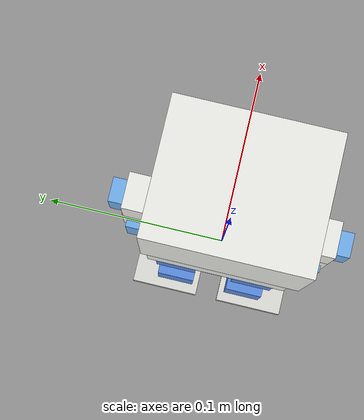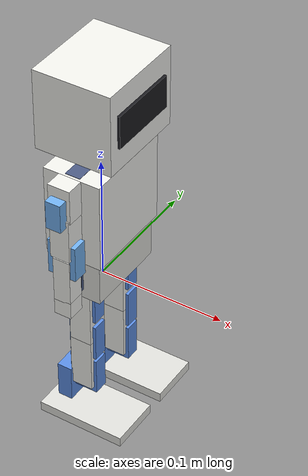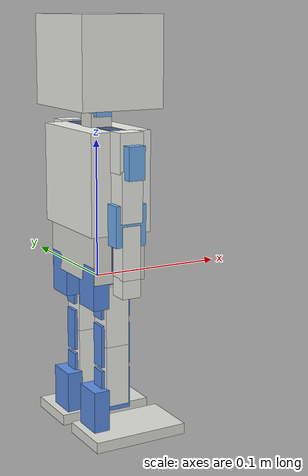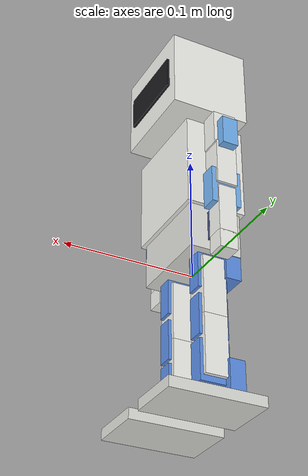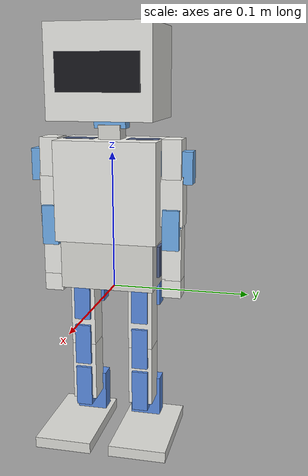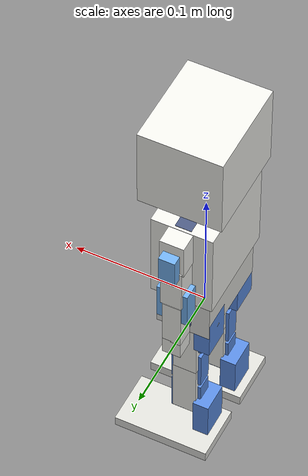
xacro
<?xml version="1.0"?>
<!-- Generated by sim/mini_humanoid/gen_robot.py — edit that file, not this one.
     Mico for Gazebo Harmonic (gz-sim) + ros2_control. Same links, joints and frames as humanoid.urdf. -->
<robot name="mico" xmlns:xacro="http://www.ros.org/wiki/xacro">
  <xacro:arg name="controllers" default="$(find humanoid_description)/config/mico_controllers.yaml"/>
  <!-- camera:=false skips the rendered head camera (no GPU in the VM, or a faster headless run) -->
  <xacro:arg name="camera" default="true"/>
  <!-- Frames follow REP-103 (x forward, y left, z up) and REP-120 names (imu_link, l_sole, ...).
       base_link sits at the hip point H, 115 mm above the floor in the standing pose. -->
  <material name="battery"><color rgba="0.93 0.55 0.42 1"/></material>
  <material name="frame"><color rgba="0.88 0.88 0.86 1"/></material>
  <material name="hidden"><color rgba="0 0 0 0"/></material>
  <material name="lens"><color rgba="0.1 0.1 0.12 1"/></material>
  <material name="mg90s"><color rgba="0.3 0.36 0.52 1"/></material>
  <material name="mg92b"><color rgba="0.36 0.56 0.9 1"/></material>
  <material name="pcb"><color rgba="0.36 0.75 0.6 1"/></material>
  <material name="sg90"><color rgba="0.45 0.7 0.95 1"/></material>
  <material name="shell"><color rgba="0.95 0.95 0.93 1"/></material>
  <link name="base_link">
    <inertial><origin xyz="-0.0012 0.0000 0.0674"/><mass value="0.2168"/><inertia ixx="1.698e-04" iyy="1.210e-04" izz="8.576e-05" ixy="0" ixz="0" iyz="0"/></inertial>
    <visual name="pelvis"><origin xyz="0.0000 0.0000 0.0210"/><geometry><box size="0.0400 0.0680 0.0360"/></geometry><material name="frame"/></visual>
    <collision name="pelvis_collision"><origin xyz="0.0000 0.0000 0.0210"/><geometry><box size="0.0400 0.0680 0.0360"/></geometry></collision>
    <visual name="torso_shell"><origin xyz="0.0000 0.0000 0.0740"/><geometry><box size="0.0460 0.0740 0.0720"/></geometry><material name="shell"/></visual>
    <collision name="torso_shell_collision"><origin xyz="0.0000 0.0000 0.0740"/><geometry><box size="0.0460 0.0740 0.0720"/></geometry></collision>
    <visual name="battery_2s"><origin xyz="0.0000 0.0000 0.0495"/><geometry><box size="0.0300 0.0560 0.0190"/></geometry><material name="battery"/></visual>
    <collision name="battery_2s_collision"><origin xyz="0.0000 0.0000 0.0495"/><geometry><box size="0.0300 0.0560 0.0190"/></geometry></collision>
    <visual name="electronics"><origin xyz="0.0000 0.0000 0.0750"/><geometry><box size="0.0250 0.0620 0.0250"/></geometry><material name="pcb"/></visual>
    <collision name="electronics_collision"><origin xyz="0.0000 0.0000 0.0750"/><geometry><box size="0.0250 0.0620 0.0250"/></geometry></collision>
    <visual name="ubec"><origin xyz="-0.0170 0.0000 0.0820"/><geometry><box size="0.0080 0.0260 0.0460"/></geometry><material name="pcb"/></visual>
    <collision name="ubec_collision"><origin xyz="-0.0170 0.0000 0.0820"/><geometry><box size="0.0080 0.0260 0.0460"/></geometry></collision>
    <visual name="l_shoulder_pitch_servo"><origin xyz="0.0000 0.0235 0.0960"/><geometry><box size="0.0122 0.0228 0.0285"/></geometry><material name="mg90s"/></visual>
    <collision name="l_shoulder_pitch_servo_collision"><origin xyz="0.0000 0.0235 0.0960"/><geometry><box size="0.0122 0.0228 0.0285"/></geometry></collision>
    <visual name="r_shoulder_pitch_servo"><origin xyz="0.0000 -0.0235 0.0960"/><geometry><box size="0.0122 0.0228 0.0285"/></geometry><material name="mg90s"/></visual>
    <collision name="r_shoulder_pitch_servo_collision"><origin xyz="0.0000 -0.0235 0.0960"/><geometry><box size="0.0122 0.0228 0.0285"/></geometry></collision>
    <visual name="neck_yaw_servo"><origin xyz="0.0000 0.0000 0.0980"/><geometry><box size="0.0122 0.0290 0.0230"/></geometry><material name="sg90"/></visual>
    <collision name="neck_yaw_servo_collision"><origin xyz="0.0000 0.0000 0.0980"/><geometry><box size="0.0122 0.0290 0.0230"/></geometry></collision>
  </link>
  <link name="l_hip_yaw_link">
    <inertial><origin xyz="0.0000 0.0000 0.0220"/><mass value="0.0134"/><inertia ixx="1.488e-06" iyy="7.467e-07" izz="1.073e-06" ixy="0" ixz="0" iyz="0"/></inertial>
    <visual name="l_hip_yaw_servo"><origin xyz="0.0000 0.0000 0.0220"/><geometry><box size="0.0122 0.0285 0.0228"/></geometry><material name="mg90s"/></visual>
    <collision name="l_hip_yaw_servo_collision"><origin xyz="0.0000 0.0000 0.0220"/><geometry><box size="0.0122 0.0285 0.0228"/></geometry></collision>
  </link>
  <link name="l_hip_roll_link">
    <inertial><origin xyz="-0.0140 0.0000 0.0000"/><mass value="0.0140"/><inertia ixx="1.728e-06" iyy="1.289e-06" izz="7.745e-07" ixy="0" ixz="0" iyz="0"/></inertial>
    <visual name="l_hip_roll_servo"><origin xyz="-0.0140 0.0000 0.0000"/><geometry><box size="0.0120 0.0228 0.0310"/></geometry><material name="mg92b"/></visual>
    <collision name="l_hip_roll_servo_collision"><origin xyz="-0.0140 0.0000 0.0000"/><geometry><box size="0.0120 0.0228 0.0310"/></geometry></collision>
  </link>
  <link name="l_hip_pitch_link">
    <inertial><origin xyz="0.0000 0.0000 -0.0149"/><mass value="0.0250"/><inertia ixx="4.565e-06" iyy="5.004e-06" izz="1.368e-06" ixy="0" ixz="0" iyz="0"/></inertial>
    <visual name="l_hip_pitch_servo"><origin xyz="0.0000 0.0000 -0.0090"/><geometry><box size="0.0228 0.0120 0.0310"/></geometry><material name="mg92b"/></visual>
    <collision name="l_hip_pitch_servo_collision"><origin xyz="0.0000 0.0000 -0.0090"/><geometry><box size="0.0228 0.0120 0.0310"/></geometry></collision>
    <visual name="l_thigh"><origin xyz="0.0000 0.0000 -0.0225"/><geometry><box size="0.0180 0.0180 0.0450"/></geometry><material name="shell"/></visual>
    <collision name="l_thigh_collision"><origin xyz="0.0000 0.0000 -0.0225"/><geometry><box size="0.0180 0.0180 0.0450"/></geometry></collision>
  </link>
  <link name="l_knee_link">
    <inertial><origin xyz="0.0000 0.0000 -0.0099"/><mass value="0.0250"/><inertia ixx="6.561e-06" iyy="6.999e-06" izz="1.368e-06" ixy="0" ixz="0" iyz="0"/></inertial>
    <visual name="l_knee_servo"><origin xyz="0.0000 0.0000 0.0000"/><geometry><box size="0.0228 0.0120 0.0310"/></geometry><material name="mg92b"/></visual>
    <collision name="l_knee_servo_collision"><origin xyz="0.0000 0.0000 0.0000"/><geometry><box size="0.0228 0.0120 0.0310"/></geometry></collision>
    <visual name="l_shin"><origin xyz="0.0000 0.0000 -0.0225"/><geometry><box size="0.0180 0.0180 0.0450"/></geometry><material name="shell"/></visual>
    <collision name="l_shin_collision"><origin xyz="0.0000 0.0000 -0.0225"/><geometry><box size="0.0180 0.0180 0.0450"/></geometry></collision>
  </link>
  <link name="l_ankle_pitch_link">
    <inertial><origin xyz="0.0000 0.0000 0.0110"/><mass value="0.0140"/><inertia ixx="1.289e-06" iyy="1.728e-06" izz="7.745e-07" ixy="0" ixz="0" iyz="0"/></inertial>
    <visual name="l_ankle_pitch_servo"><origin xyz="0.0000 0.0000 0.0110"/><geometry><box size="0.0228 0.0120 0.0310"/></geometry><material name="mg92b"/></visual>
    <collision name="l_ankle_pitch_servo_collision"><origin xyz="0.0000 0.0000 0.0110"/><geometry><box size="0.0228 0.0120 0.0310"/></geometry></collision>
  </link>
  <link name="l_ankle_roll_link">
    <inertial><origin xyz="-0.0029 0.0028 -0.0108"/><mass value="0.0260"/><inertia ixx="6.121e-06" iyy="1.259e-05" izz="1.168e-05" ixy="0" ixz="0" iyz="0"/></inertial>
    <visual name="l_ankle_roll_servo"><origin xyz="-0.0140 0.0000 -0.0020"/><geometry><box size="0.0120 0.0228 0.0310"/></geometry><material name="mg92b"/></visual>
    <collision name="l_ankle_roll_servo_collision"><origin xyz="-0.0140 0.0000 -0.0020"/><geometry><box size="0.0120 0.0228 0.0310"/></geometry></collision>
    <visual name="l_foot"><origin xyz="0.0100 0.0060 -0.0210"/><geometry><box size="0.0720 0.0420 0.0080"/></geometry><material name="frame"/></visual>
    <collision name="l_foot_collision"><origin xyz="0.0100 0.0060 -0.0210"/><geometry><box size="0.0720 0.0420 0.0080"/></geometry></collision>
  </link>
  <link name="r_hip_yaw_link">
    <inertial><origin xyz="0.0000 0.0000 0.0220"/><mass value="0.0134"/><inertia ixx="1.488e-06" iyy="7.467e-07" izz="1.073e-06" ixy="0" ixz="0" iyz="0"/></inertial>
    <visual name="r_hip_yaw_servo"><origin xyz="0.0000 0.0000 0.0220"/><geometry><box size="0.0122 0.0285 0.0228"/></geometry><material name="mg90s"/></visual>
    <collision name="r_hip_yaw_servo_collision"><origin xyz="0.0000 0.0000 0.0220"/><geometry><box size="0.0122 0.0285 0.0228"/></geometry></collision>
  </link>
  <link name="r_hip_roll_link">
    <inertial><origin xyz="-0.0140 0.0000 0.0000"/><mass value="0.0140"/><inertia ixx="1.728e-06" iyy="1.289e-06" izz="7.745e-07" ixy="0" ixz="0" iyz="0"/></inertial>
    <visual name="r_hip_roll_servo"><origin xyz="-0.0140 0.0000 0.0000"/><geometry><box size="0.0120 0.0228 0.0310"/></geometry><material name="mg92b"/></visual>
    <collision name="r_hip_roll_servo_collision"><origin xyz="-0.0140 0.0000 0.0000"/><geometry><box size="0.0120 0.0228 0.0310"/></geometry></collision>
  </link>
  <link name="r_hip_pitch_link">
    <inertial><origin xyz="0.0000 0.0000 -0.0149"/><mass value="0.0250"/><inertia ixx="4.565e-06" iyy="5.004e-06" izz="1.368e-06" ixy="0" ixz="0" iyz="0"/></inertial>
    <visual name="r_hip_pitch_servo"><origin xyz="0.0000 0.0000 -0.0090"/><geometry><box size="0.0228 0.0120 0.0310"/></geometry><material name="mg92b"/></visual>
    <collision name="r_hip_pitch_servo_collision"><origin xyz="0.0000 0.0000 -0.0090"/><geometry><box size="0.0228 0.0120 0.0310"/></geometry></collision>
    <visual name="r_thigh"><origin xyz="0.0000 0.0000 -0.0225"/><geometry><box size="0.0180 0.0180 0.0450"/></geometry><material name="shell"/></visual>
    <collision name="r_thigh_collision"><origin xyz="0.0000 0.0000 -0.0225"/><geometry><box size="0.0180 0.0180 0.0450"/></geometry></collision>
  </link>
  <link name="r_knee_link">
    <inertial><origin xyz="0.0000 0.0000 -0.0099"/><mass value="0.0250"/><inertia ixx="6.561e-06" iyy="6.999e-06" izz="1.368e-06" ixy="0" ixz="0" iyz="0"/></inertial>
    <visual name="r_knee_servo"><origin xyz="0.0000 0.0000 0.0000"/><geometry><box size="0.0228 0.0120 0.0310"/></geometry><material name="mg92b"/></visual>
    <collision name="r_knee_servo_collision"><origin xyz="0.0000 0.0000 0.0000"/><geometry><box size="0.0228 0.0120 0.0310"/></geometry></collision>
    <visual name="r_shin"><origin xyz="0.0000 0.0000 -0.0225"/><geometry><box size="0.0180 0.0180 0.0450"/></geometry><material name="shell"/></visual>
    <collision name="r_shin_collision"><origin xyz="0.0000 0.0000 -0.0225"/><geometry><box size="0.0180 0.0180 0.0450"/></geometry></collision>
  </link>
  <link name="r_ankle_pitch_link">
    <inertial><origin xyz="0.0000 0.0000 0.0110"/><mass value="0.0140"/><inertia ixx="1.289e-06" iyy="1.728e-06" izz="7.745e-07" ixy="0" ixz="0" iyz="0"/></inertial>
    <visual name="r_ankle_pitch_servo"><origin xyz="0.0000 0.0000 0.0110"/><geometry><box size="0.0228 0.0120 0.0310"/></geometry><material name="mg92b"/></visual>
    <collision name="r_ankle_pitch_servo_collision"><origin xyz="0.0000 0.0000 0.0110"/><geometry><box size="0.0228 0.0120 0.0310"/></geometry></collision>
  </link>
  <link name="r_ankle_roll_link">
    <inertial><origin xyz="-0.0029 -0.0028 -0.0108"/><mass value="0.0260"/><inertia ixx="6.121e-06" iyy="1.259e-05" izz="1.168e-05" ixy="0" ixz="0" iyz="0"/></inertial>
    <visual name="r_ankle_roll_servo"><origin xyz="-0.0140 0.0000 -0.0020"/><geometry><box size="0.0120 0.0228 0.0310"/></geometry><material name="mg92b"/></visual>
    <collision name="r_ankle_roll_servo_collision"><origin xyz="-0.0140 0.0000 -0.0020"/><geometry><box size="0.0120 0.0228 0.0310"/></geometry></collision>
    <visual name="r_foot"><origin xyz="0.0100 -0.0060 -0.0210"/><geometry><box size="0.0720 0.0420 0.0080"/></geometry><material name="frame"/></visual>
    <collision name="r_foot_collision"><origin xyz="0.0100 -0.0060 -0.0210"/><geometry><box size="0.0720 0.0420 0.0080"/></geometry></collision>
  </link>
  <link name="l_shoulder_pitch_link">
    <inertial><origin xyz="0.0000 0.0050 0.0000"/><mass value="0.0010"/><inertia ixx="8.167e-08" iyy="9.233e-08" izz="4.333e-08" ixy="0" ixz="0" iyz="0"/></inertial>
    <visual name="l_shoulder_cap"><origin xyz="0.0000 0.0050 0.0000"/><geometry><box size="0.0180 0.0140 0.0280"/></geometry><material name="shell"/></visual>
    <collision name="l_shoulder_cap_collision"><origin xyz="0.0000 0.0050 0.0000"/><geometry><box size="0.0180 0.0140 0.0280"/></geometry></collision>
  </link>
  <link name="l_shoulder_roll_link">
    <inertial><origin xyz="0.0000 0.0000 -0.0120"/><mass value="0.0120"/><inertia ixx="2.711e-06" iyy="2.192e-06" izz="8.704e-07" ixy="0" ixz="0" iyz="0"/></inertial>
    <visual name="l_shoulder_roll_servo"><origin xyz="0.0000 0.0000 -0.0060"/><geometry><box size="0.0122 0.0290 0.0230"/></geometry><material name="sg90"/></visual>
    <collision name="l_shoulder_roll_servo_collision"><origin xyz="0.0000 0.0000 -0.0060"/><geometry><box size="0.0122 0.0290 0.0230"/></geometry></collision>
    <visual name="l_upper_arm"><origin xyz="0.0000 0.0000 -0.0300"/><geometry><box size="0.0160 0.0160 0.0360"/></geometry><material name="shell"/></visual>
    <collision name="l_upper_arm_collision"><origin xyz="0.0000 0.0000 -0.0300"/><geometry><box size="0.0160 0.0160 0.0360"/></geometry></collision>
  </link>
  <link name="l_elbow_link">
    <inertial><origin xyz="0.0000 0.0000 -0.0083"/><mass value="0.0125"/><inertia ixx="3.825e-06" iyy="4.111e-06" izz="6.227e-07" ixy="0" ixz="0" iyz="0"/></inertial>
    <visual name="l_elbow_servo"><origin xyz="0.0000 0.0000 0.0000"/><geometry><box size="0.0230 0.0122 0.0290"/></geometry><material name="sg90"/></visual>
    <collision name="l_elbow_servo_collision"><origin xyz="0.0000 0.0000 0.0000"/><geometry><box size="0.0230 0.0122 0.0290"/></geometry></collision>
    <visual name="l_forearm"><origin xyz="0.0000 0.0000 -0.0190"/><geometry><box size="0.0140 0.0140 0.0380"/></geometry><material name="shell"/></visual>
    <collision name="l_forearm_collision"><origin xyz="0.0000 0.0000 -0.0190"/><geometry><box size="0.0140 0.0140 0.0380"/></geometry></collision>
    <visual name="l_hand"><origin xyz="0.0000 0.0000 -0.0440"/><geometry><box size="0.0140 0.0140 0.0140"/></geometry><material name="shell"/></visual>
    <collision name="l_hand_collision"><origin xyz="0.0000 0.0000 -0.0440"/><geometry><box size="0.0140 0.0140 0.0140"/></geometry></collision>
  </link>
  <link name="r_shoulder_pitch_link">
    <inertial><origin xyz="0.0000 -0.0050 0.0000"/><mass value="0.0010"/><inertia ixx="8.167e-08" iyy="9.233e-08" izz="4.333e-08" ixy="0" ixz="0" iyz="0"/></inertial>
    <visual name="r_shoulder_cap"><origin xyz="0.0000 -0.0050 0.0000"/><geometry><box size="0.0180 0.0140 0.0280"/></geometry><material name="shell"/></visual>
    <collision name="r_shoulder_cap_collision"><origin xyz="0.0000 -0.0050 0.0000"/><geometry><box size="0.0180 0.0140 0.0280"/></geometry></collision>
  </link>
  <link name="r_shoulder_roll_link">
    <inertial><origin xyz="0.0000 0.0000 -0.0120"/><mass value="0.0120"/><inertia ixx="2.711e-06" iyy="2.192e-06" izz="8.704e-07" ixy="0" ixz="0" iyz="0"/></inertial>
    <visual name="r_shoulder_roll_servo"><origin xyz="0.0000 0.0000 -0.0060"/><geometry><box size="0.0122 0.0290 0.0230"/></geometry><material name="sg90"/></visual>
    <collision name="r_shoulder_roll_servo_collision"><origin xyz="0.0000 0.0000 -0.0060"/><geometry><box size="0.0122 0.0290 0.0230"/></geometry></collision>
    <visual name="r_upper_arm"><origin xyz="0.0000 0.0000 -0.0300"/><geometry><box size="0.0160 0.0160 0.0360"/></geometry><material name="shell"/></visual>
    <collision name="r_upper_arm_collision"><origin xyz="0.0000 0.0000 -0.0300"/><geometry><box size="0.0160 0.0160 0.0360"/></geometry></collision>
  </link>
  <link name="r_elbow_link">
    <inertial><origin xyz="0.0000 0.0000 -0.0083"/><mass value="0.0125"/><inertia ixx="3.825e-06" iyy="4.111e-06" izz="6.227e-07" ixy="0" ixz="0" iyz="0"/></inertial>
    <visual name="r_elbow_servo"><origin xyz="0.0000 0.0000 0.0000"/><geometry><box size="0.0230 0.0122 0.0290"/></geometry><material name="sg90"/></visual>
    <collision name="r_elbow_servo_collision"><origin xyz="0.0000 0.0000 0.0000"/><geometry><box size="0.0230 0.0122 0.0290"/></geometry></collision>
    <visual name="r_forearm"><origin xyz="0.0000 0.0000 -0.0190"/><geometry><box size="0.0140 0.0140 0.0380"/></geometry><material name="shell"/></visual>
    <collision name="r_forearm_collision"><origin xyz="0.0000 0.0000 -0.0190"/><geometry><box size="0.0140 0.0140 0.0380"/></geometry></collision>
    <visual name="r_hand"><origin xyz="0.0000 0.0000 -0.0440"/><geometry><box size="0.0140 0.0140 0.0140"/></geometry><material name="shell"/></visual>
    <collision name="r_hand_collision"><origin xyz="0.0000 0.0000 -0.0440"/><geometry><box size="0.0140 0.0140 0.0140"/></geometry></collision>
  </link>
  <link name="neck_yaw_link">
    <inertial><origin xyz="0.0000 0.0000 0.0168"/><mass value="0.0130"/><inertia ixx="1.946e-06" iyy="1.661e-06" izz="6.790e-07" ixy="0" ixz="0" iyz="0"/></inertial>
    <visual name="neck"><origin xyz="0.0000 0.0000 0.0050"/><geometry><box size="0.0160 0.0160 0.0100"/></geometry><material name="frame"/></visual>
    <collision name="neck_collision"><origin xyz="0.0000 0.0000 0.0050"/><geometry><box size="0.0160 0.0160 0.0100"/></geometry></collision>
    <visual name="head_pitch_servo"><origin xyz="0.0000 0.0000 0.0220"/><geometry><box size="0.0122 0.0230 0.0290"/></geometry><material name="sg90"/></visual>
    <collision name="head_pitch_servo_collision"><origin xyz="0.0000 0.0000 0.0220"/><geometry><box size="0.0122 0.0230 0.0290"/></geometry></collision>
  </link>
  <link name="head_pitch_link">
    <inertial><origin xyz="0.0098 0.0000 0.0240"/><mass value="0.0200"/><inertia ixx="1.177e-05" iyy="1.241e-05" izz="1.404e-05" ixy="0" ixz="0" iyz="0"/></inertial>
    <visual name="head_shell"><origin xyz="0.0020 0.0000 0.0240"/><geometry><box size="0.0620 0.0740 0.0640"/></geometry><material name="shell"/></visual>
    <collision name="head_shell_collision"><origin xyz="0.0020 0.0000 0.0240"/><geometry><box size="0.0620 0.0740 0.0640"/></geometry></collision>
    <visual name="visor"><origin xyz="0.0340 0.0000 0.0240"/><geometry><box size="0.0020 0.0580 0.0260"/></geometry><material name="lens"/></visual>
    <collision name="visor_collision"><origin xyz="0.0340 0.0000 0.0240"/><geometry><box size="0.0020 0.0580 0.0260"/></geometry></collision>
    <visual name="camera"><origin xyz="0.0280 0.0000 0.0240"/><geometry><box size="0.0060 0.0250 0.0240"/></geometry><material name="pcb"/></visual>
    <collision name="camera_collision"><origin xyz="0.0280 0.0000 0.0240"/><geometry><box size="0.0060 0.0250 0.0240"/></geometry></collision>
  </link>
  <joint name="l_hip_yaw" type="revolute"><parent link="base_link"/><child link="l_hip_yaw_link"/><origin xyz="0.0000 0.0220 0.0000"/><axis xyz="0 0 1"/><limit lower="-0.7854" upper="0.7854" effort="0.216" velocity="13.09"/><dynamics damping="0.02" friction="0"/></joint>
  <joint name="r_hip_yaw" type="revolute"><parent link="base_link"/><child link="r_hip_yaw_link"/><origin xyz="0.0000 -0.0220 0.0000"/><axis xyz="0 0 1"/><limit lower="-0.7854" upper="0.7854" effort="0.216" velocity="13.09"/><dynamics damping="0.02" friction="0"/></joint>
  <joint name="l_shoulder_pitch" type="revolute"><parent link="base_link"/><child link="l_shoulder_pitch_link"/><origin xyz="0.0000 0.0400 0.0970"/><axis xyz="0 1 0"/><limit lower="-3.1416" upper="1.0472" effort="0.216" velocity="13.09"/><dynamics damping="0.02" friction="0"/></joint>
  <joint name="r_shoulder_pitch" type="revolute"><parent link="base_link"/><child link="r_shoulder_pitch_link"/><origin xyz="0.0000 -0.0400 0.0970"/><axis xyz="0 1 0"/><limit lower="-3.1416" upper="1.0472" effort="0.216" velocity="13.09"/><dynamics damping="0.02" friction="0"/></joint>
  <joint name="neck_yaw" type="revolute"><parent link="base_link"/><child link="neck_yaw_link"/><origin xyz="0.0000 0.0000 0.1100"/><axis xyz="0 0 1"/><limit lower="-1.5708" upper="1.5708" effort="0.177" velocity="10.47"/><dynamics damping="0.02" friction="0"/></joint>
  <joint name="l_hip_roll" type="revolute"><parent link="l_hip_yaw_link"/><child link="l_hip_roll_link"/><origin xyz="0.0000 0.0000 0.0000"/><axis xyz="1 0 0"/><limit lower="-0.4363" upper="0.4363" effort="0.343" velocity="13.09"/><dynamics damping="0.02" friction="0"/></joint>
  <joint name="l_hip_pitch" type="revolute"><parent link="l_hip_roll_link"/><child link="l_hip_pitch_link"/><origin xyz="0.0000 0.0000 0.0000"/><axis xyz="0 1 0"/><limit lower="-1.5708" upper="0.7854" effort="0.343" velocity="13.09"/><dynamics damping="0.02" friction="0"/></joint>
  <joint name="l_knee" type="revolute"><parent link="l_hip_pitch_link"/><child link="l_knee_link"/><origin xyz="0.0000 0.0000 -0.0450"/><axis xyz="0 1 0"/><limit lower="0.0000" upper="2.0944" effort="0.343" velocity="13.09"/><dynamics damping="0.02" friction="0"/></joint>
  <joint name="l_ankle_pitch" type="revolute"><parent link="l_knee_link"/><child link="l_ankle_pitch_link"/><origin xyz="0.0000 0.0000 -0.0450"/><axis xyz="0 1 0"/><limit lower="-0.7854" upper="0.7854" effort="0.343" velocity="13.09"/><dynamics damping="0.02" friction="0"/></joint>
  <joint name="l_ankle_roll" type="revolute"><parent link="l_ankle_pitch_link"/><child link="l_ankle_roll_link"/><origin xyz="0.0000 0.0000 0.0000"/><axis xyz="1 0 0"/><limit lower="-0.5236" upper="0.5236" effort="0.343" velocity="13.09"/><dynamics damping="0.02" friction="0"/></joint>
  <joint name="r_hip_roll" type="revolute"><parent link="r_hip_yaw_link"/><child link="r_hip_roll_link"/><origin xyz="0.0000 0.0000 0.0000"/><axis xyz="1 0 0"/><limit lower="-0.4363" upper="0.4363" effort="0.343" velocity="13.09"/><dynamics damping="0.02" friction="0"/></joint>
  <joint name="r_hip_pitch" type="revolute"><parent link="r_hip_roll_link"/><child link="r_hip_pitch_link"/><origin xyz="0.0000 0.0000 0.0000"/><axis xyz="0 1 0"/><limit lower="-1.5708" upper="0.7854" effort="0.343" velocity="13.09"/><dynamics damping="0.02" friction="0"/></joint>
  <joint name="r_knee" type="revolute"><parent link="r_hip_pitch_link"/><child link="r_knee_link"/><origin xyz="0.0000 0.0000 -0.0450"/><axis xyz="0 1 0"/><limit lower="0.0000" upper="2.0944" effort="0.343" velocity="13.09"/><dynamics damping="0.02" friction="0"/></joint>
  <joint name="r_ankle_pitch" type="revolute"><parent link="r_knee_link"/><child link="r_ankle_pitch_link"/><origin xyz="0.0000 0.0000 -0.0450"/><axis xyz="0 1 0"/><limit lower="-0.7854" upper="0.7854" effort="0.343" velocity="13.09"/><dynamics damping="0.02" friction="0"/></joint>
  <joint name="r_ankle_roll" type="revolute"><parent link="r_ankle_pitch_link"/><child link="r_ankle_roll_link"/><origin xyz="0.0000 0.0000 0.0000"/><axis xyz="1 0 0"/><limit lower="-0.5236" upper="0.5236" effort="0.343" velocity="13.09"/><dynamics damping="0.02" friction="0"/></joint>
  <joint name="l_shoulder_roll" type="revolute"><parent link="l_shoulder_pitch_link"/><child link="l_shoulder_roll_link"/><origin xyz="0.0000 0.0050 0.0000"/><axis xyz="1 0 0"/><limit lower="-0.1745" upper="2.7925" effort="0.177" velocity="10.47"/><dynamics damping="0.02" friction="0"/></joint>
  <joint name="l_elbow" type="revolute"><parent link="l_shoulder_roll_link"/><child link="l_elbow_link"/><origin xyz="0.0000 0.0000 -0.0500"/><axis xyz="0 1 0"/><limit lower="-2.2689" upper="0.0000" effort="0.177" velocity="10.47"/><dynamics damping="0.02" friction="0"/></joint>
  <joint name="r_shoulder_roll" type="revolute"><parent link="r_shoulder_pitch_link"/><child link="r_shoulder_roll_link"/><origin xyz="0.0000 -0.0050 0.0000"/><axis xyz="1 0 0"/><limit lower="-2.7925" upper="0.1745" effort="0.177" velocity="10.47"/><dynamics damping="0.02" friction="0"/></joint>
  <joint name="r_elbow" type="revolute"><parent link="r_shoulder_roll_link"/><child link="r_elbow_link"/><origin xyz="0.0000 0.0000 -0.0500"/><axis xyz="0 1 0"/><limit lower="-2.2689" upper="0.0000" effort="0.177" velocity="10.47"/><dynamics damping="0.02" friction="0"/></joint>
  <joint name="head_pitch" type="revolute"><parent link="neck_yaw_link"/><child link="head_pitch_link"/><origin xyz="0.0000 0.0000 0.0220"/><axis xyz="0 1 0"/><limit lower="-0.5236" upper="0.7854" effort="0.177" velocity="10.47"/><dynamics damping="0.02" friction="0"/></joint>
  <link name="imu_link"/>
  <joint name="imu_link_joint" type="fixed"><parent link="base_link"/><child link="imu_link"/><origin xyz="0.0000 0.0000 0.0300" rpy="0.000000 0.000000 0.000000"/></joint>
  <link name="camera_link"/>
  <joint name="camera_link_joint" type="fixed"><parent link="head_pitch_link"/><child link="camera_link"/><origin xyz="0.0310 0.0000 0.0420" rpy="0.000000 0.261799 0.000000"/></joint>
  <link name="tof_link"/>
  <joint name="tof_link_joint" type="fixed"><parent link="head_pitch_link"/><child link="tof_link"/><origin xyz="0.0310 0.0080 0.0450" rpy="0.000000 0.349066 0.000000"/></joint>
  <link name="l_mic_link"/>
  <joint name="l_mic_link_joint" type="fixed"><parent link="head_pitch_link"/><child link="l_mic_link"/><origin xyz="0.0020 0.0385 0.0240" rpy="0.000000 0.000000 1.570796"/></joint>
  <link name="r_mic_link"/>
  <joint name="r_mic_link_joint" type="fixed"><parent link="head_pitch_link"/><child link="r_mic_link"/><origin xyz="0.0020 -0.0385 0.0240" rpy="0.000000 0.000000 -1.570796"/></joint>
  <link name="l_sole"/>
  <joint name="l_sole_joint" type="fixed"><parent link="l_ankle_roll_link"/><child link="l_sole"/><origin xyz="0.0000 0.0000 -0.0250" rpy="0.000000 0.000000 0.000000"/></joint>
  <link name="r_sole"/>
  <joint name="r_sole_joint" type="fixed"><parent link="r_ankle_roll_link"/><child link="r_sole"/><origin xyz="0.0000 0.0000 -0.0250" rpy="0.000000 0.000000 0.000000"/></joint>
  <link name="l_gripper"/>
  <joint name="l_gripper_joint" type="fixed"><parent link="l_elbow_link"/><child link="l_gripper"/><origin xyz="0.0000 0.0000 -0.0440" rpy="0.000000 0.000000 0.000000"/></joint>
  <link name="r_gripper"/>
  <joint name="r_gripper_joint" type="fixed"><parent link="r_elbow_link"/><child link="r_gripper"/><origin xyz="0.0000 0.0000 -0.0440" rpy="0.000000 0.000000 0.000000"/></joint>
  <link name="camera_optical_frame"/>
  <joint name="camera_optical_joint" type="fixed"><parent link="camera_link"/><child link="camera_optical_frame"/><origin xyz="0 0 0" rpy="-1.570796 0.000000 -1.570796"/></joint>

  <ros2_control name="mico" type="system">
    <hardware><plugin>gz_ros2_control/GazeboSimSystem</plugin></hardware>
    <joint name="l_hip_yaw"><command_interface name="position"/><state_interface name="position"><param name="initial_value">0.0</param></state_interface><state_interface name="velocity"/><state_interface name="effort"/></joint>
    <joint name="l_hip_roll"><command_interface name="position"/><state_interface name="position"><param name="initial_value">0.0</param></state_interface><state_interface name="velocity"/><state_interface name="effort"/></joint>
    <joint name="l_hip_pitch"><command_interface name="position"/><state_interface name="position"><param name="initial_value">0.0</param></state_interface><state_interface name="velocity"/><state_interface name="effort"/></joint>
    <joint name="l_knee"><command_interface name="position"/><state_interface name="position"><param name="initial_value">0.0</param></state_interface><state_interface name="velocity"/><state_interface name="effort"/></joint>
    <joint name="l_ankle_pitch"><command_interface name="position"/><state_interface name="position"><param name="initial_value">0.0</param></state_interface><state_interface name="velocity"/><state_interface name="effort"/></joint>
    <joint name="l_ankle_roll"><command_interface name="position"/><state_interface name="position"><param name="initial_value">0.0</param></state_interface><state_interface name="velocity"/><state_interface name="effort"/></joint>
    <joint name="r_hip_yaw"><command_interface name="position"/><state_interface name="position"><param name="initial_value">0.0</param></state_interface><state_interface name="velocity"/><state_interface name="effort"/></joint>
    <joint name="r_hip_roll"><command_interface name="position"/><state_interface name="position"><param name="initial_value">0.0</param></state_interface><state_interface name="velocity"/><state_interface name="effort"/></joint>
    <joint name="r_hip_pitch"><command_interface name="position"/><state_interface name="position"><param name="initial_value">0.0</param></state_interface><state_interface name="velocity"/><state_interface name="effort"/></joint>
    <joint name="r_knee"><command_interface name="position"/><state_interface name="position"><param name="initial_value">0.0</param></state_interface><state_interface name="velocity"/><state_interface name="effort"/></joint>
    <joint name="r_ankle_pitch"><command_interface name="position"/><state_interface name="position"><param name="initial_value">0.0</param></state_interface><state_interface name="velocity"/><state_interface name="effort"/></joint>
    <joint name="r_ankle_roll"><command_interface name="position"/><state_interface name="position"><param name="initial_value">0.0</param></state_interface><state_interface name="velocity"/><state_interface name="effort"/></joint>
    <joint name="l_shoulder_pitch"><command_interface name="position"/><state_interface name="position"><param name="initial_value">0.0</param></state_interface><state_interface name="velocity"/><state_interface name="effort"/></joint>
    <joint name="l_shoulder_roll"><command_interface name="position"/><state_interface name="position"><param name="initial_value">0.0</param></state_interface><state_interface name="velocity"/><state_interface name="effort"/></joint>
    <joint name="l_elbow"><command_interface name="position"/><state_interface name="position"><param name="initial_value">0.0</param></state_interface><state_interface name="velocity"/><state_interface name="effort"/></joint>
    <joint name="r_shoulder_pitch"><command_interface name="position"/><state_interface name="position"><param name="initial_value">0.0</param></state_interface><state_interface name="velocity"/><state_interface name="effort"/></joint>
    <joint name="r_shoulder_roll"><command_interface name="position"/><state_interface name="position"><param name="initial_value">0.0</param></state_interface><state_interface name="velocity"/><state_interface name="effort"/></joint>
    <joint name="r_elbow"><command_interface name="position"/><state_interface name="position"><param name="initial_value">0.0</param></state_interface><state_interface name="velocity"/><state_interface name="effort"/></joint>
    <joint name="neck_yaw"><command_interface name="position"/><state_interface name="position"><param name="initial_value">0.0</param></state_interface><state_interface name="velocity"/><state_interface name="effort"/></joint>
    <joint name="head_pitch"><command_interface name="position"/><state_interface name="position"><param name="initial_value">0.0</param></state_interface><state_interface name="velocity"/><state_interface name="effort"/></joint>
  </ros2_control>

  <gazebo>
    <plugin filename="gz_ros2_control-system" name="gz_ros2_control::GazeboSimROS2ControlPlugin">
      <parameters>$(arg controllers)</parameters>
    </plugin>
    <plugin filename="gz-sim-imu-system" name="gz::sim::systems::Imu"/>
    <!-- ground-truth odom -> base_link for Foxglove / RViz (the real robot will estimate this from the IMU) -->
    <plugin filename="gz-sim-odometry-publisher-system" name="gz::sim::systems::OdometryPublisher">
      <odom_frame>odom</odom_frame><robot_base_frame>base_link</robot_base_frame><dimensions>3</dimensions>
      <odom_publish_frequency>50</odom_publish_frequency>
    </plugin>
  </gazebo>

  <gazebo reference="imu_link">
    <sensor name="imu" type="imu">
      <always_on>1</always_on><update_rate>200</update_rate><topic>imu</topic><gz_frame_id>imu_link</gz_frame_id>
      <imu><angular_velocity><x><noise type="gaussian"><mean>0</mean><stddev>0.00087</stddev></noise></x><y><noise type="gaussian"><mean>0</mean><stddev>0.00087</stddev></noise></y><z><noise type="gaussian"><mean>0</mean><stddev>0.00087</stddev></noise></z></angular_velocity><linear_acceleration><x><noise type="gaussian"><mean>0</mean><stddev>0.039</stddev></noise></x><y><noise type="gaussian"><mean>0</mean><stddev>0.039</stddev></noise></y><z><noise type="gaussian"><mean>0</mean><stddev>0.039</stddev></noise></z></linear_acceleration></imu>
    </sensor>
  </gazebo>

  <!-- rendered sensors (camera, ToF) need ogre2; camera:=false skips them on machines without a GPU -->
  <xacro:if value="$(arg camera)">
  <gazebo>
    <plugin filename="gz-sim-sensors-system" name="gz::sim::systems::Sensors">
      <render_engine>ogre2</render_engine>
    </plugin>
  </gazebo>

  <gazebo reference="camera_link">
    <sensor name="head_camera" type="camera">
      <always_on>1</always_on><update_rate>30</update_rate><topic>camera/image_raw</topic>
      <gz_frame_id>camera_optical_frame</gz_frame_id>
      <camera><horizontal_fov>1.0856</horizontal_fov>
        <image><width>640</width><height>480</height><format>R8G8B8</format></image>
        <clip><near>0.02</near><far>10</far></clip><optical_frame_id>camera_optical_frame</optical_frame_id></camera>
    </sensor>
  </gazebo>

  <gazebo reference="tof_link">
    <sensor name="tof" type="gpu_lidar">
      <always_on>1</always_on><update_rate>30</update_rate><topic>tof</topic><gz_frame_id>tof_link</gz_frame_id>
      <lidar><scan><horizontal><samples>1</samples><resolution>1</resolution>
        <min_angle>0</min_angle><max_angle>0</max_angle></horizontal></scan>
        <range><min>0.03</min><max>2.0</max><resolution>0.001</resolution></range></lidar>
    </sensor>
  </gazebo>
  </xacro:if>

  <gazebo reference="l_ankle_roll_link"><mu1>1.0</mu1><mu2>1.0</mu2></gazebo>
  <gazebo reference="r_ankle_roll_link"><mu1>1.0</mu1><mu2>1.0</mu2></gazebo>
</robot>
